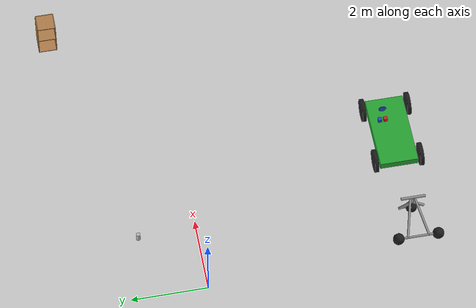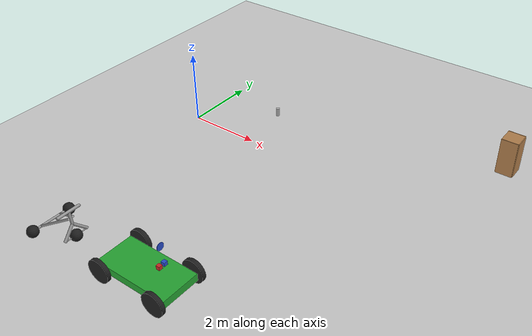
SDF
<sdf version="1.6">
 <world name="default">
  <light name="sun" type="directional">
   <pose>0 0 10 0 -0 0</pose>
   <diffuse>0.8 0.8 0.8 1</diffuse>
   <specular>0.2 0.2 0.2 1</specular>
   <attenuation>
    <range>1000</range>
    <constant>0.9</constant>
    <linear>0.01</linear>
    <quadratic>0.001</quadratic>
   </attenuation>
   <direction>-0.5 0.1 -0.9</direction>
  </light>
  <model name="ground_plane">
   <static>1</static>
   <link name="link">
    <collision name="collision">
     <geometry><plane><normal>0 0 1</normal><size>100 100</size></plane></geometry>
     <surface><friction><ode><mu>100</mu><mu2>50</mu2></ode></friction></surface>
    </collision>
    <visual name="visual">
     <cast_shadows>0</cast_shadows>
     <geometry><plane><normal>0 0 1</normal><size>100 100</size></plane></geometry>
     <material>
      <script><uri>file://media/materials/scripts/gazebo.material</uri><name>Gazebo/Grey</name></script>
     </material>
    </visual>
    <velocity_decay><linear>0</linear><angular>0</angular></velocity_decay>
   </link>
  </model>
  <physics name="default_physics" default="0" type="ode">
   <max_step_size>0.001</max_step_size>
   <real_time_factor>1</real_time_factor>
   <real_time_update_rate>1000</real_time_update_rate>
  </physics>
  <scene><ambient>0.4 0.4 0.4 1</ambient><background>0.7 0.7 0.7 1</background><shadows>1</shadows></scene>
  <spherical_coordinates>
   <surface_model>EARTH_WGS84</surface_model>
   <latitude_deg>0</latitude_deg>
   <longitude_deg>0</longitude_deg>
   <elevation>0</elevation>
   <heading_deg>0</heading_deg>
  </spherical_coordinates>
  <gravity>0 0 -9.8</gravity>
  <magnetic_field>6e-06 2.3e-05 -4.2e-05</magnetic_field>
  <atmosphere type="adiabatic"/>
  <model name="beer">
   <link name="link">
    <pose>0 0 0.115 0 -0 0</pose>
    <inertial>
     <mass>0.39</mass>
     <inertia><ixx>0.00058</ixx><ixy>0</ixy><ixz>0</ixz><iyy>0.00058</iyy><iyz>0</iyz><izz>0.00019</izz></inertia>
    </inertial>
    <collision name="collision">
     <geometry><cylinder><radius>0.055</radius><length>0.23</length></cylinder></geometry>
    </collision>
    <visual name="visual">
     <geometry><cylinder><radius>0.055</radius><length>0.23</length></cylinder></geometry>
     <material>
      <script>
       <uri>model://beer/materials/scripts</uri>
       <uri>model://beer/materials/textures</uri>
       <name>Beer/Diffuse</name>
      </script>
     </material>
    </visual>
   </link>
   <pose>1.75865 1.5099 -2e-06 0 0 -2.8e-05</pose>
  </model>
  <model name="cabinet">
   <static>1</static>
   <link name="cabinet_bottom_plate">
    <inertial>
     <pose>0 0 -1 0 -0 0</pose>
     <inertia><ixx>2.05</ixx><ixy>0</ixy><ixz>0</ixz><iyy>2.05</iyy><iyz>0</iyz><izz>2.05</izz></inertia>
     <mass>25</mass>
    </inertial>
    <collision name="cabinet_bottom_plate_geom">
     <pose>0 0 0.01 0 -0 0</pose>
     <geometry><box><size>0.45 0.45 0.02</size></box></geometry>
    </collision>
    <visual name="cabinet_bottom_plate_geom_visual">
     <pose>0 0 0.01 0 -0 0</pose>
     <geometry><box><size>0.45 0.45 0.02</size></box></geometry>
     <material>
      <script><uri>file://media/materials/scripts/gazebo.material</uri><name>Gazebo/Wood</name></script>
     </material>
    </visual>
    <collision name="cabinet_bottom_plate_geom_cabinet_back_plate">
     <pose>0.235 0 0.51 0 -0 0</pose>
     <geometry><box><size>0.02 0.45 1.02</size></box></geometry>
    </collision>
    <visual name="cabinet_bottom_plate_geom_cabinet_back_plate_visual">
     <pose>0.235 0 0.51 0 -0 0</pose>
     <geometry><box><size>0.02 0.45 1.02</size></box></geometry>
     <material>
      <script><uri>file://media/materials/scripts/gazebo.material</uri><name>Gazebo/Wood</name></script>
     </material>
    </visual>
    <collision name="cabinet_bottom_plate_geom_cabinet_left_plate">
     <pose>0 0.235 0.51 0 -0 0</pose>
     <geometry><box><size>0.45 0.02 1.02</size></box></geometry>
    </collision>
    <visual name="cabinet_bottom_plate_geom_cabinet_left_plate_visual">
     <pose>0 0.235 0.51 0 -0 0</pose>
     <geometry><box><size>0.45 0.02 1.02</size></box></geometry>
     <material>
      <script><uri>file://media/materials/scripts/gazebo.material</uri><name>Gazebo/Wood</name></script>
     </material>
    </visual>
    <collision name="cabinet_bottom_plate_geom_cabinet_middle_plate">
     <pose>0 0 0.51 0 -0 0</pose>
     <geometry><box><size>0.45 0.45 0.02</size></box></geometry>
    </collision>
    <visual name="cabinet_bottom_plate_geom_cabinet_middle_plate_visual">
     <pose>0 0 0.51 0 -0 0</pose>
     <geometry><box><size>0.45 0.45 0.02</size></box></geometry>
     <material>
      <script><uri>file://media/materials/scripts/gazebo.material</uri><name>Gazebo/Wood</name></script>
     </material>
    </visual>
    <collision name="cabinet_bottom_plate_geom_cabinet_right_plate">
     <pose>0 -0.235 0.51 0 -0 0</pose>
     <geometry><box><size>0.45 0.02 1.02</size></box></geometry>
    </collision>
    <visual name="cabinet_bottom_plate_geom_cabinet_right_plate_visual">
     <pose>0 -0.235 0.51 0 -0 0</pose>
     <geometry><box><size>0.45 0.02 1.02</size></box></geometry>
     <material>
      <script><uri>file://media/materials/scripts/gazebo.material</uri><name>Gazebo/Wood</name></script>
     </material>
    </visual>
    <collision name="cabinet_bottom_plate_geom_cabinet_top_plate">
     <pose>0 0 1.01 0 -0 0</pose>
     <geometry><box><size>0.45 0.45 0.02</size></box></geometry>
    </collision>
    <visual name="cabinet_bottom_plate_geom_cabinet_top_plate_visual">
     <pose>0 0 1.01 0 -0 0</pose>
     <geometry><box><size>0.45 0.45 0.02</size></box></geometry>
     <material>
      <script><uri>file://media/materials/scripts/gazebo.material</uri><name>Gazebo/Wood</name></script>
     </material>
    </visual>
   </link>
   <pose>8.18877 2.90092 0 0 -0 0</pose>
  </model>
  <model name="car">
   <link name="chassis">
    <pose>0 0 0.3 0 -0 0</pose>
    <collision name="collision"><geometry><box><size>2 1 0.2</size></box></geometry></collision>
    <visual name="visual">
     <geometry><box><size>2 1 0.2</size></box></geometry>
     <material>
      <script><uri>file://media/materials/scripts/gazebo.material</uri><name>Gazebo/Green</name></script>
     </material>
    </visual>
    <inertial>
     <inertia><ixx>1</ixx><ixy>0</ixy><ixz>0</ixz><iyy>1</iyy><iyz>0</iyz><izz>1</izz></inertia>
     <mass>1</mass>
    </inertial>
   </link>
   <link name="front_left_wheel">
    <pose>0.8 0.6 0.3 -0 1.5707 1.5707</pose>
    <collision name="collision">
     <geometry><cylinder><radius>0.3</radius><length>0.1</length></cylinder></geometry>
    </collision>
    <visual name="visual">
     <geometry><cylinder><radius>0.3</radius><length>0.1</length></cylinder></geometry>
     <material>
      <script><uri>file://media/materials/scripts/gazebo.material</uri><name>Gazebo/Black</name></script>
     </material>
    </visual>
    <inertial>
     <inertia><ixx>1</ixx><ixy>0</ixy><ixz>0</ixz><iyy>1</iyy><iyz>0</iyz><izz>1</izz></inertia>
     <mass>1</mass>
    </inertial>
   </link>
   <link name="front_right_wheel">
    <pose>0.8 -0.6 0.3 -0 1.5707 1.5707</pose>
    <collision name="collision">
     <geometry><cylinder><radius>0.3</radius><length>0.1</length></cylinder></geometry>
    </collision>
    <visual name="visual">
     <geometry><cylinder><radius>0.3</radius><length>0.1</length></cylinder></geometry>
     <material>
      <script><uri>file://media/materials/scripts/gazebo.material</uri><name>Gazebo/Black</name></script>
     </material>
    </visual>
    <inertial>
     <inertia><ixx>1</ixx><ixy>0</ixy><ixz>0</ixz><iyy>1</iyy><iyz>0</iyz><izz>1</izz></inertia>
     <mass>1</mass>
    </inertial>
   </link>
   <link name="back_right_wheel">
    <pose>-0.8 -0.6 0.3 -0 1.5707 1.5707</pose>
    <collision name="collision">
     <geometry><cylinder><radius>0.3</radius><length>0.1</length></cylinder></geometry>
    </collision>
    <visual name="visual">
     <geometry><cylinder><radius>0.3</radius><length>0.1</length></cylinder></geometry>
     <material>
      <script><uri>file://media/materials/scripts/gazebo.material</uri><name>Gazebo/Black</name></script>
     </material>
    </visual>
    <inertial>
     <inertia><ixx>1</ixx><ixy>0</ixy><ixz>0</ixz><iyy>1</iyy><iyz>0</iyz><izz>1</izz></inertia>
     <mass>1</mass>
    </inertial>
   </link>
   <link name="back_left_wheel">
    <pose>-0.8 0.6 0.3 -0 1.5707 1.5707</pose>
    <collision name="collision">
     <geometry><cylinder><radius>0.3</radius><length>0.1</length></cylinder></geometry>
    </collision>
    <visual name="visual">
     <geometry><cylinder><radius>0.3</radius><length>0.1</length></cylinder></geometry>
     <material>
      <script><uri>file://media/materials/scripts/gazebo.material</uri><name>Gazebo/Black</name></script>
     </material>
    </visual>
    <inertial>
     <inertia><ixx>1</ixx><ixy>0</ixy><ixz>0</ixz><iyy>1</iyy><iyz>0</iyz><izz>1</izz></inertia>
     <mass>1</mass>
    </inertial>
   </link>
   <link name="gas_pedal">
    <pose>0.3 0.1 0.5 0 -0 0</pose>
    <collision name="collision"><geometry><box><size>0.1 0.1 0.1</size></box></geometry></collision>
    <visual name="visual">
     <geometry><box><size>0.1 0.1 0.1</size></box></geometry>
     <material>
      <script><uri>file://media/materials/scripts/gazebo.material</uri><name>Gazebo/Red</name></script>
     </material>
    </visual>
    <inertial>
     <inertia><ixx>1</ixx><ixy>0</ixy><ixz>0</ixz><iyy>1</iyy><iyz>0</iyz><izz>1</izz></inertia>
     <mass>1</mass>
    </inertial>
   </link>
   <link name="brake_pedal">
    <pose>0.3 0.25 0.5 0 -0 0</pose>
    <collision name="collision"><geometry><box><size>0.1 0.1 0.1</size></box></geometry></collision>
    <visual name="visual">
     <geometry><box><size>0.1 0.1 0.1</size></box></geometry>
     <material>
      <script><uri>file://media/materials/scripts/gazebo.material</uri><name>Gazebo/Blue</name></script>
     </material>
    </visual>
    <inertial>
     <inertia><ixx>1</ixx><ixy>0</ixy><ixz>0</ixz><iyy>1</iyy><iyz>0</iyz><izz>1</izz></inertia>
     <mass>1</mass>
    </inertial>
   </link>
   <link name="steering_wheel">
    <pose>0.3 0.2 1 0 1.5707 0</pose>
    <collision name="collision">
     <geometry><cylinder><radius>0.1</radius><length>0.01</length></cylinder></geometry>
    </collision>
    <visual name="visual">
     <geometry><cylinder><radius>0.1</radius><length>0.01</length></cylinder></geometry>
     <material>
      <script><uri>file://media/materials/scripts/gazebo.material</uri><name>Gazebo/Blue</name></script>
     </material>
    </visual>
    <inertial>
     <inertia><ixx>1</ixx><ixy>0</ixy><ixz>0</ixz><iyy>1</iyy><iyz>0</iyz><izz>1</izz></inertia>
     <mass>1</mass>
    </inertial>
   </link>
   <joint name="gas_joint" type="prismatic">
    <parent>chassis</parent>
    <child>gas_pedal</child>
    <axis>
     <xyz>1 0 0</xyz>
     <limit><lower>0</lower><upper>0.2</upper></limit>
     <use_parent_model_frame>1</use_parent_model_frame>
     <dynamics><spring_reference>0</spring_reference><spring_stiffness>0</spring_stiffness></dynamics>
    </axis>
   </joint>
   <joint name="brake_joint" type="prismatic">
    <parent>chassis</parent>
    <child>brake_pedal</child>
    <axis>
     <xyz>1 0 0</xyz>
     <limit><lower>0</lower><upper>0.2</upper></limit>
     <use_parent_model_frame>1</use_parent_model_frame>
     <dynamics><spring_reference>0</spring_reference><spring_stiffness>0</spring_stiffness></dynamics>
    </axis>
   </joint>
   <joint name="steering_joint" type="revolute">
    <parent>chassis</parent>
    <child>steering_wheel</child>
    <axis>
     <xyz>1 0 0</xyz>
     <limit><lower>-7.853</lower><upper>7.853</upper></limit>
     <use_parent_model_frame>1</use_parent_model_frame>
     <dynamics><spring_reference>0</spring_reference><spring_stiffness>0</spring_stiffness></dynamics>
    </axis>
   </joint>
   <joint name="front_left_joint" type="revolute2">
    <parent>chassis</parent>
    <child>front_left_wheel</child>
    <axis>
     <xyz>0 0 1</xyz>
     <limit><lower>8.68089e-06</lower><upper>8.68089e-06</upper></limit>
     <use_parent_model_frame>1</use_parent_model_frame>
     <dynamics><spring_reference>0</spring_reference><spring_stiffness>0</spring_stiffness></dynamics>
    </axis>
    <axis2>
     <xyz>0 1 0</xyz>
     <use_parent_model_frame>1</use_parent_model_frame>
     <dynamics><spring_reference>0</spring_reference><spring_stiffness>0</spring_stiffness></dynamics>
    </axis2>
    <physics><ode><limit><cfm>0</cfm><erp>0.9</erp></limit></ode></physics>
   </joint>
   <joint name="front_right_joint" type="revolute2">
    <parent>chassis</parent>
    <child>front_right_wheel</child>
    <axis>
     <xyz>0 0 1</xyz>
     <limit><lower>8.68089e-06</lower><upper>8.68089e-06</upper></limit>
     <use_parent_model_frame>1</use_parent_model_frame>
     <dynamics><spring_reference>0</spring_reference><spring_stiffness>0</spring_stiffness></dynamics>
    </axis>
    <axis2>
     <xyz>0 1 0</xyz>
     <use_parent_model_frame>1</use_parent_model_frame>
     <dynamics><spring_reference>0</spring_reference><spring_stiffness>0</spring_stiffness></dynamics>
    </axis2>
    <physics><ode><limit><cfm>0</cfm><erp>0.9</erp></limit></ode></physics>
   </joint>
   <joint name="back_right_joint" type="revolute2">
    <parent>chassis</parent>
    <child>back_right_wheel</child>
    <axis>
     <xyz>0 0 1</xyz>
     <limit><lower>0</lower><upper>0</upper></limit>
     <use_parent_model_frame>1</use_parent_model_frame>
     <dynamics><spring_reference>0</spring_reference><spring_stiffness>0</spring_stiffness></dynamics>
    </axis>
    <axis2>
     <xyz>0 1 0</xyz>
     <use_parent_model_frame>1</use_parent_model_frame>
     <dynamics><spring_reference>0</spring_reference><spring_stiffness>0</spring_stiffness></dynamics>
    </axis2>
    <physics><ode><limit><cfm>0</cfm><erp>0.9</erp></limit></ode></physics>
   </joint>
   <joint name="back_left_joint" type="revolute2">
    <parent>chassis</parent>
    <child>back_left_wheel</child>
    <axis>
     <xyz>0 0 1</xyz>
     <limit><lower>0</lower><upper>0</upper></limit>
     <use_parent_model_frame>1</use_parent_model_frame>
     <dynamics><spring_reference>0</spring_reference><spring_stiffness>0</spring_stiffness></dynamics>
    </axis>
    <axis2>
     <xyz>0 1 0</xyz>
     <use_parent_model_frame>1</use_parent_model_frame>
     <dynamics><spring_reference>0</spring_reference><spring_stiffness>0</spring_stiffness></dynamics>
    </axis2>
    <physics><ode><limit><cfm>0</cfm><erp>0.9</erp></limit></ode></physics>
   </joint>
   <plugin name="vehicle" filename="libVehiclePlugin.so">
    <front_left>front_left_joint</front_left>
    <front_right>front_right_joint</front_right>
    <back_left>back_left_joint</back_left>
    <back_right>back_right_joint</back_right>
    <gas>gas_joint</gas>
    <brake>brake_joint</brake>
    <steering>steering_joint</steering>
    <front_power>10</front_power>
    <rear_power>10</rear_power>
    <tire_angle_range>0.5</tire_angle_range>
    <max_speed>10</max_speed>
    <aero_load>0.1</aero_load>
   </plugin>
   <pose>3.59646 -5.50292 -0.002614 -0.000273 0.000907 0.000642</pose>
  </model>
  <model name="trisphere_cycle">
   <link name="frame">
    <pose>-0.408559 0 0.385023 0 -0.522021 0</pose>
    <inertial>
     <mass>10</mass>
     <inertia><ixx>0.228</ixx><iyy>0.743521</iyy><izz>0.965521</izz><ixy>0</ixy><ixz>0</ixz><iyz>0</iyz></inertia>
    </inertial>
    <collision name="axle_collision">
     <pose>-0.471335 0 0 1.5708 -0 0</pose>
     <geometry><cylinder><length>1.03923</length><radius>0.03</radius></cylinder></geometry>
    </collision>
    <visual name="axle_visual">
     <pose>-0.471335 0 0 1.5708 -0 0</pose>
     <geometry><cylinder><length>1.03923</length><radius>0.03</radius></cylinder></geometry>
     <material>
      <script><uri>file://media/materials/scripts/gazebo.material</uri><name>Gazebo/Grey</name></script>
     </material>
    </visual>
    <collision name="frame_left_collision">
     <pose>0 0.171552 0 2.986 1.57079 2.76675</pose>
     <geometry><cylinder><length>1.00317</length><radius>0.03</radius></cylinder></geometry>
    </collision>
    <visual name="frame_left_visual">
     <pose>0 0.171552 0 2.986 1.57079 2.76675</pose>
     <geometry><cylinder><length>1.00317</length><radius>0.03</radius></cylinder></geometry>
     <material>
      <script><uri>file://media/materials/scripts/gazebo.material</uri><name>Gazebo/Grey</name></script>
     </material>
    </visual>
    <collision name="frame_right_collision">
     <pose>0 -0.171552 0 -2.986 1.57079 -2.76675</pose>
     <geometry><cylinder><length>1.00317</length><radius>0.03</radius></cylinder></geometry>
    </collision>
    <visual name="frame_right_visual">
     <pose>0 -0.171552 0 -2.986 1.57079 -2.76675</pose>
     <geometry><cylinder><length>1.00317</length><radius>0.03</radius></cylinder></geometry>
     <material>
      <script><uri>file://media/materials/scripts/gazebo.material</uri><name>Gazebo/Grey</name></script>
     </material>
    </visual>
   </link>
   <link name="fork">
    <pose>0.041441 0 0.385023 0 -0.174533 0</pose>
    <inertial>
     <mass>3</mass>
     <inertia>
      <ixx>0.158203</ixx>
      <iyy>0.0583594</iyy>
      <izz>0.102656</izz>
      <ixy>0</ixy>
      <ixz>0</ixz>
      <iyz>0</iyz>
     </inertia>
    </inertial>
    <collision name="handlebars_collision">
     <pose>0 0 0.397748 1.5708 -0 0</pose>
     <geometry><cylinder><length>0.636396</length><radius>0.0375</radius></cylinder></geometry>
    </collision>
    <visual name="handlebars_visual">
     <pose>0 0 0.397748 1.5708 -0 0</pose>
     <geometry><cylinder><length>0.636396</length><radius>0.0375</radius></cylinder></geometry>
     <material>
      <script><uri>file://media/materials/scripts/gazebo.material</uri><name>Gazebo/Grey</name></script>
     </material>
    </visual>
    <collision name="headtube_collision">
     <pose>0 0 0.238649 0 -0 0</pose>
     <geometry><cylinder><length>0.318198</length><radius>0.0375</radius></cylinder></geometry>
    </collision>
    <visual name="headtube_visual">
     <pose>0 0 0.238649 0 -0 0</pose>
     <geometry><cylinder><length>0.318198</length><radius>0.0375</radius></cylinder></geometry>
     <material>
      <script><uri>file://media/materials/scripts/gazebo.material</uri><name>Gazebo/Grey</name></script>
     </material>
    </visual>
    <collision name="spindle_collision">
     <pose>0 0 -0.238649 1.5708 -0 0</pose>
     <geometry><cylinder><length>0.636396</length><radius>0.015</radius></cylinder></geometry>
    </collision>
    <visual name="spindle_visual">
     <pose>0 0 -0.238649 1.5708 -0 0</pose>
     <geometry><cylinder><length>0.636396</length><radius>0.015</radius></cylinder></geometry>
     <material>
      <script><uri>file://media/materials/scripts/gazebo.material</uri><name>Gazebo/Grey</name></script>
     </material>
    </visual>
    <collision name="fork_left_collision">
     <pose>0 0.159099 -0.07955 0.785398 -0 0</pose>
     <geometry><cylinder><length>0.45</length><radius>0.0375</radius></cylinder></geometry>
    </collision>
    <visual name="fork_left_visual">
     <pose>0 0.159099 -0.07955 0.785398 -0 0</pose>
     <geometry><cylinder><length>0.45</length><radius>0.0375</radius></cylinder></geometry>
     <material>
      <script><uri>file://media/materials/scripts/gazebo.material</uri><name>Gazebo/Grey</name></script>
     </material>
    </visual>
    <collision name="fork_right_collision">
     <pose>0 -0.159099 -0.07955 -0.785398 0 0</pose>
     <geometry><cylinder><length>0.45</length><radius>0.0375</radius></cylinder></geometry>
    </collision>
    <visual name="fork_right_visual">
     <pose>0 -0.159099 -0.07955 -0.785398 0 0</pose>
     <geometry><cylinder><length>0.45</length><radius>0.0375</radius></cylinder></geometry>
     <material>
      <script><uri>file://media/materials/scripts/gazebo.material</uri><name>Gazebo/Grey</name></script>
     </material>
    </visual>
   </link>
   <link name="wheel_front">
    <pose>0.082882 0 0.15 0 -0 0</pose>
    <inertial>
     <mass>0.5</mass>
     <inertia><ixx>0.0045</ixx><iyy>0.0045</iyy><izz>0.0045</izz><ixy>0</ixy><ixz>0</ixz><iyz>0</iyz></inertia>
    </inertial>
    <collision name="collision">
     <geometry><sphere><radius>0.15</radius></sphere></geometry>
     <surface><contact><ode><kp>1e+08</kp><kd>1</kd><min_depth>0.0005</min_depth></ode></contact></surface>
    </collision>
    <visual name="visual">
     <geometry><sphere><radius>0.15</radius></sphere></geometry>
     <material>
      <script><uri>file://media/materials/scripts/gazebo.material</uri><name>Gazebo/Black</name></script>
     </material>
    </visual>
   </link>
   <joint name="wheel_front_steer" type="revolute">
    <parent>frame</parent>
    <child>fork</child>
    <axis>
     <xyz>0 0 1</xyz>
     <limit><lower>-0.959931</lower><upper>0.959931</upper></limit>
     <use_parent_model_frame>0</use_parent_model_frame>
     <dynamics><spring_reference>0</spring_reference><spring_stiffness>0</spring_stiffness></dynamics>
    </axis>
   </joint>
   <joint name="wheel_front_spin" type="revolute">
    <parent>fork</parent>
    <child>wheel_front</child>
    <axis>
     <xyz>0 1 0</xyz>
     <use_parent_model_frame>0</use_parent_model_frame>
     <limit><lower>-1e+16</lower><upper>1e+16</upper></limit>
     <dynamics><spring_reference>0</spring_reference><spring_stiffness>0</spring_stiffness></dynamics>
    </axis>
   </joint>
   <link name="wheel_rear_left">
    <pose>-0.817118 0.519615 0.15 0 -0 0</pose>
    <inertial>
     <mass>0.5</mass>
     <inertia><ixx>0.0045</ixx><iyy>0.0045</iyy><izz>0.0045</izz><ixy>0</ixy><ixz>0</ixz><iyz>0</iyz></inertia>
    </inertial>
    <collision name="collision">
     <geometry><sphere><radius>0.15</radius></sphere></geometry>
     <surface><contact><ode><kp>1e+08</kp><kd>1</kd><min_depth>0.0005</min_depth></ode></contact></surface>
    </collision>
    <visual name="visual">
     <geometry><sphere><radius>0.15</radius></sphere></geometry>
     <material>
      <script><uri>file://media/materials/scripts/gazebo.material</uri><name>Gazebo/Black</name></script>
     </material>
    </visual>
   </link>
   <joint name="wheel_rear_left_spin" type="revolute">
    <parent>frame</parent>
    <child>wheel_rear_left</child>
    <axis>
     <xyz>0 1 0</xyz>
     <use_parent_model_frame>0</use_parent_model_frame>
     <limit><lower>-1e+16</lower><upper>1e+16</upper></limit>
     <dynamics><spring_reference>0</spring_reference><spring_stiffness>0</spring_stiffness></dynamics>
    </axis>
   </joint>
   <link name="wheel_rear_right">
    <pose>-0.817118 -0.519615 0.15 0 -0 0</pose>
    <inertial>
     <mass>0.5</mass>
     <inertia><ixx>0.0045</ixx><iyy>0.0045</iyy><izz>0.0045</izz><ixy>0</ixy><ixz>0</ixz><iyz>0</iyz></inertia>
    </inertial>
    <collision name="collision">
     <geometry><sphere><radius>0.15</radius></sphere></geometry>
     <surface><contact><ode><kp>1e+08</kp><kd>1</kd><min_depth>0.0005</min_depth></ode></contact></surface>
    </collision>
    <visual name="visual">
     <geometry><sphere><radius>0.15</radius></sphere></geometry>
     <material>
      <script><uri>file://media/materials/scripts/gazebo.material</uri><name>Gazebo/Black</name></script>
     </material>
    </visual>
   </link>
   <joint name="wheel_rear_right_spin" type="revolute">
    <parent>frame</parent>
    <child>wheel_rear_right</child>
    <axis>
     <xyz>0 1 0</xyz>
     <use_parent_model_frame>0</use_parent_model_frame>
     <limit><lower>-1e+16</lower><upper>1e+16</upper></limit>
     <dynamics><spring_reference>0</spring_reference><spring_stiffness>0</spring_stiffness></dynamics>
    </axis>
   </joint>
   <pose>1.26616 -5.55705 -0.000501 0 1e-06 -0.000471</pose>
  </model>
 </world>
</sdf>
